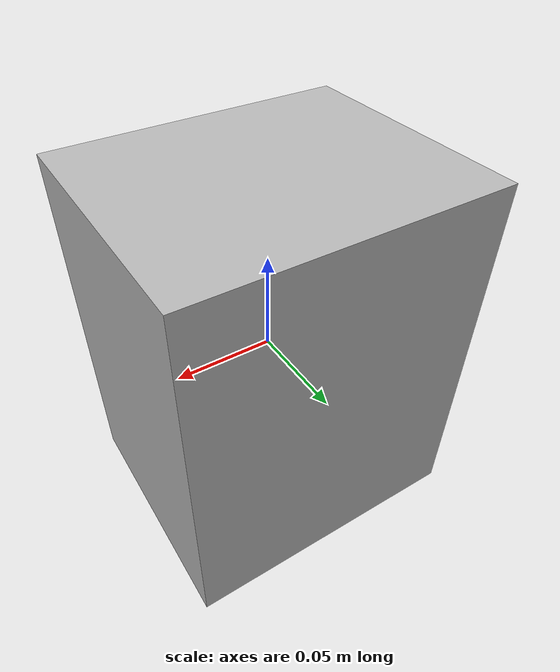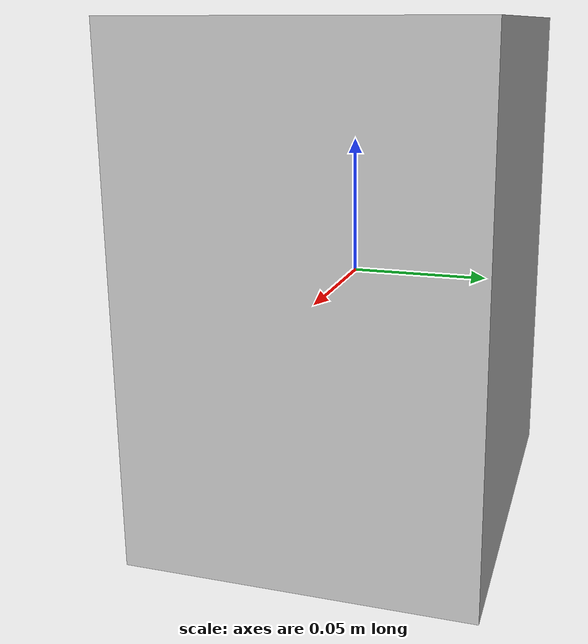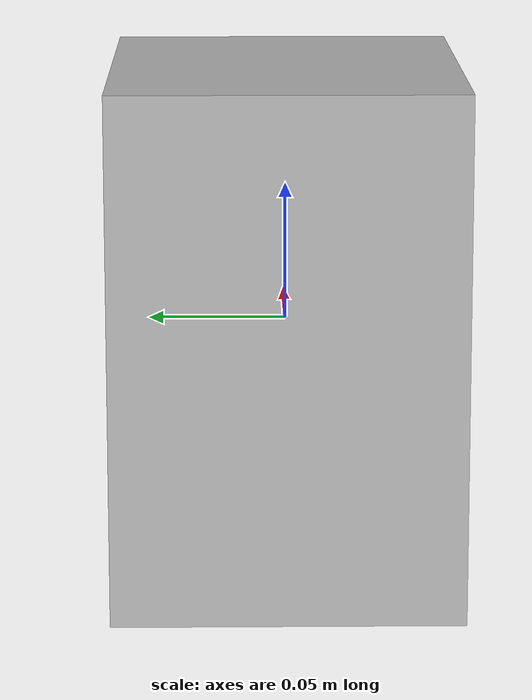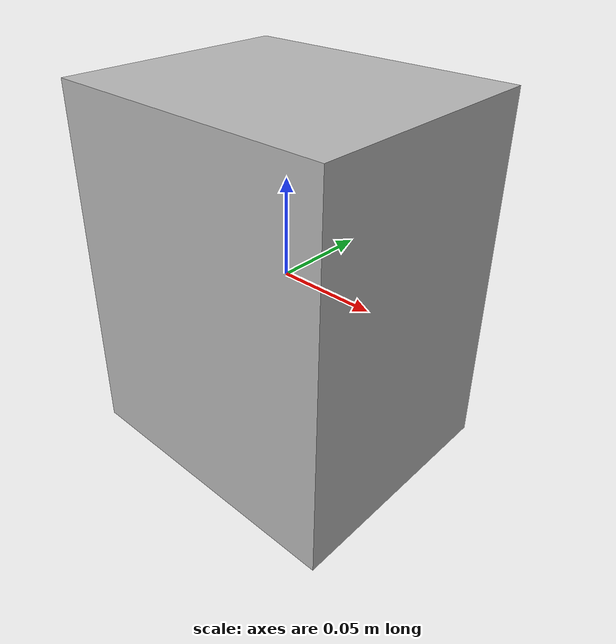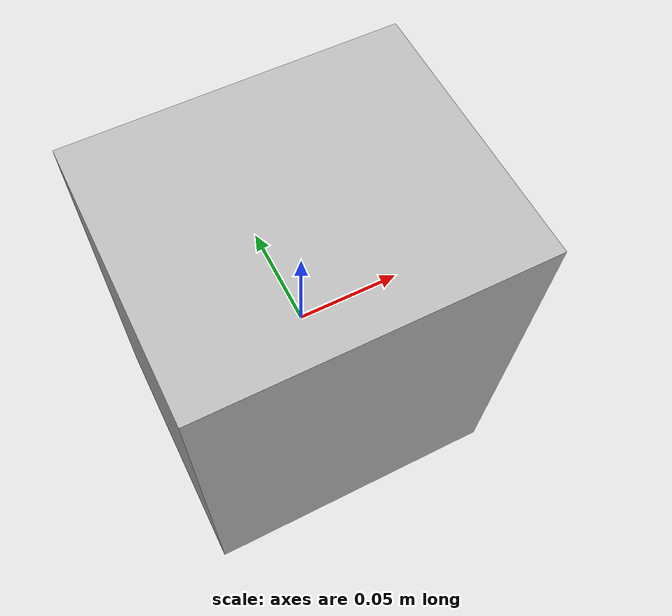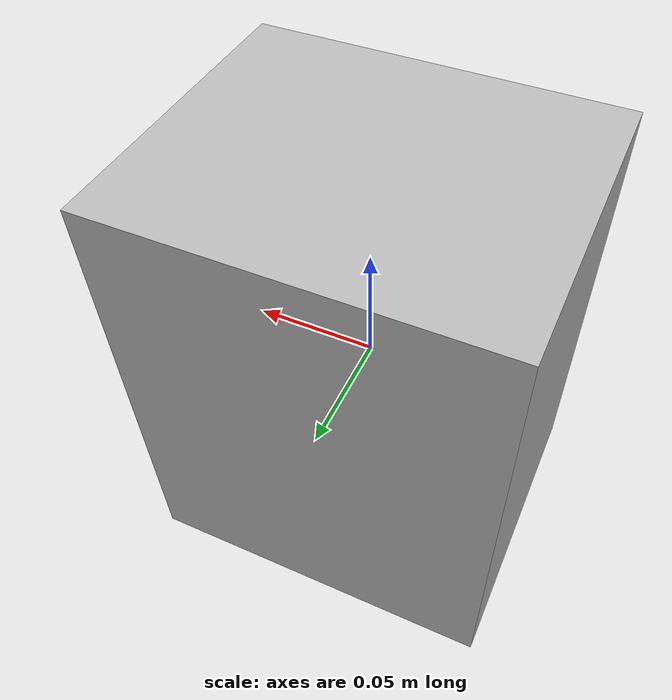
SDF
<?xml version="1.0" encoding="UTF-8"?>
<sdf version='1.9'>
  <model name='crate_chute'>

    <link name='link'>
      <inertial>
        <mass>0.1</mass>
        <!-- Solid box 0.15 x 0.10 x 0.18 about its centre. -->
        <inertia>
          <ixx>0.000353</ixx>
          <iyy>0.000457</iyy>
          <izz>0.000271</izz>
          <ixy>0</ixy><ixz>0</ixz><iyz>0</iyz>
        </inertia>
      </inertial>

      <collision name='collision'>
        <geometry>
          <box><size>0.15 0.1 0.18</size></box>
        </geometry>
      </collision>

      <!-- Crate mesh from the ported big_box, at the same 0.125 the classic
           parachute_package used. -->
      <visual name='visual'>
        <geometry>
          <mesh>
            <uri>model://big_box/meshes/big_box.dae</uri>
            <scale>0.125 0.125 0.125</scale>
          </mesh>
        </geometry>
      </visual>
    </link>

    <link name='canopy'>
      <pose>0 0 -0.02 3.14159 0 0</pose>
      <inertial>
        <mass>0.02</mass>
        <inertia>
          <ixx>0.0002</ixx>
          <iyy>0.0002</iyy>
          <izz>0.0004</izz>
          <ixy>0</ixy><ixz>0</ixz><iyz>0</iyz>
        </inertia>
      </inertial>
    </link>

    <joint name='riser' type='fixed'>
      <parent>link</parent>
      <child>canopy</child>
    </joint>

    <plugin filename="libParachuteSystem.so" name="custom::ParachuteSystem">
      <canopy_link>canopy</canopy_link>
      <canopy_model>parachute_canopy</canopy_model>
      <cd>1.75</cd>
      <area>0.12</area>
      <air_density>1.2041</air_density>
      <cp>0 0 0.625</cp>
      <deploy_delay>0.4</deploy_delay>
      <open_time>0.1</open_time>
    </plugin>

  </model>
</sdf>
